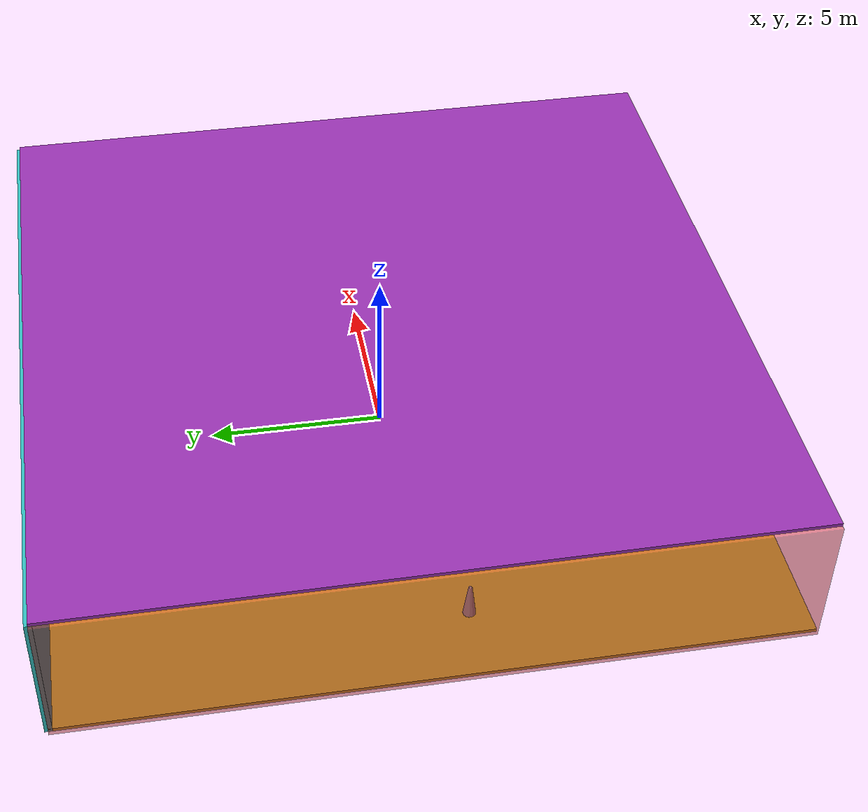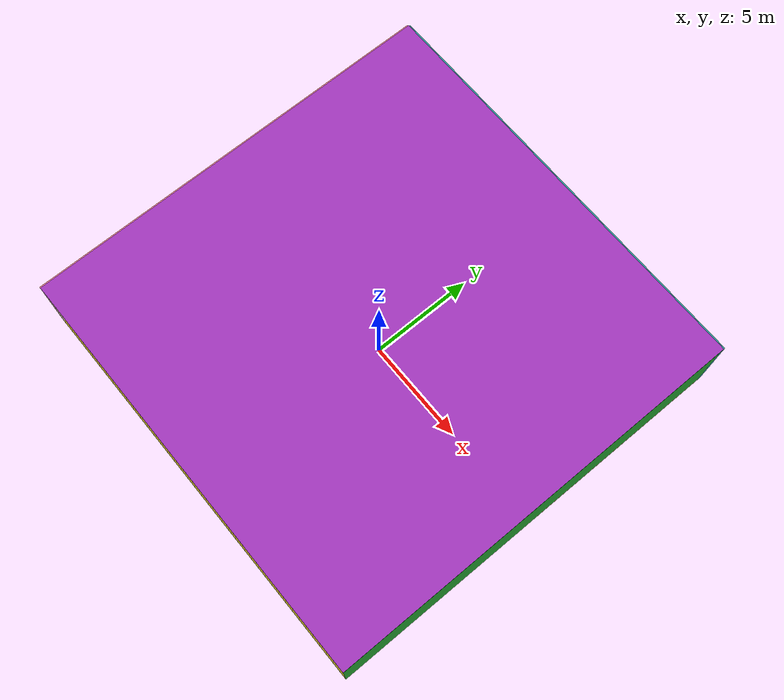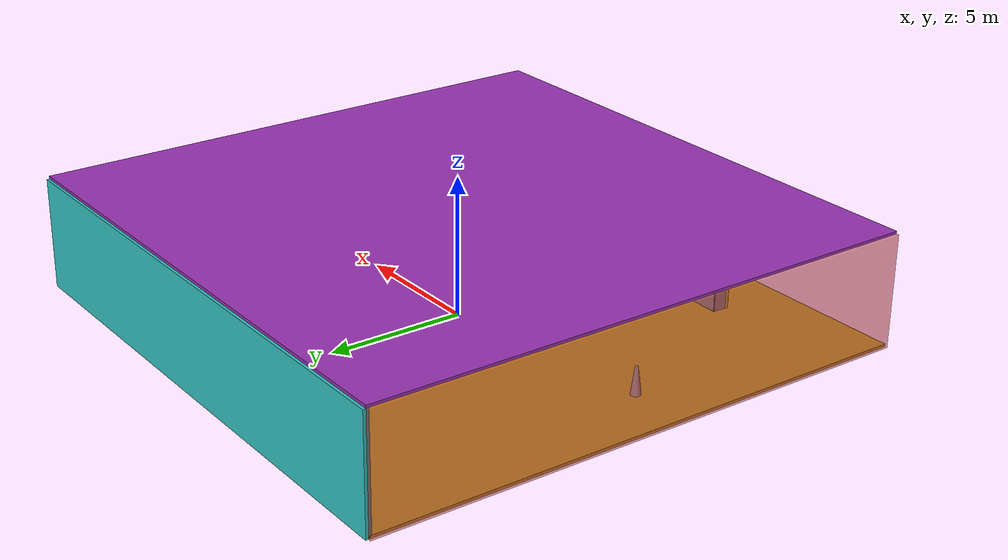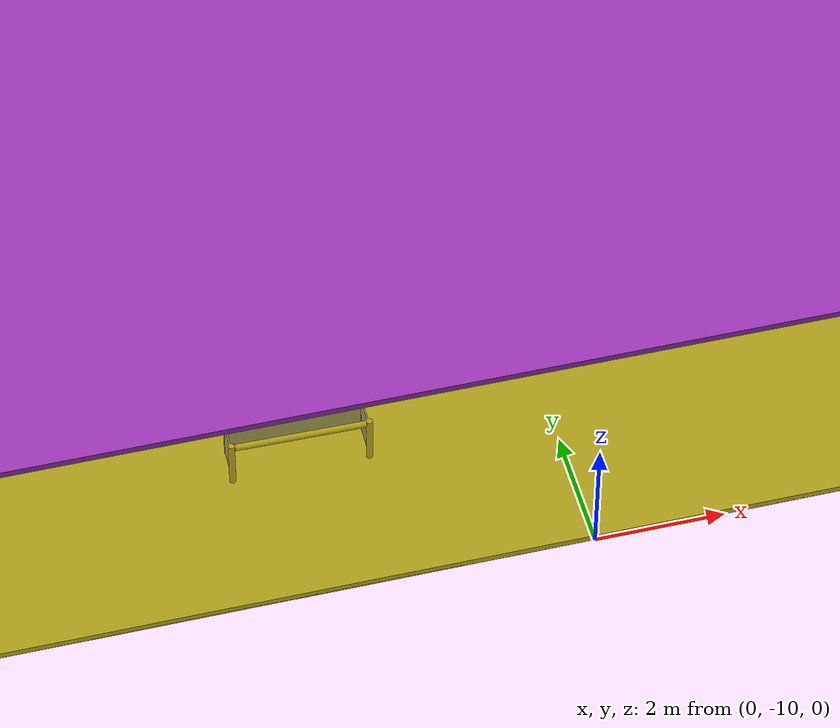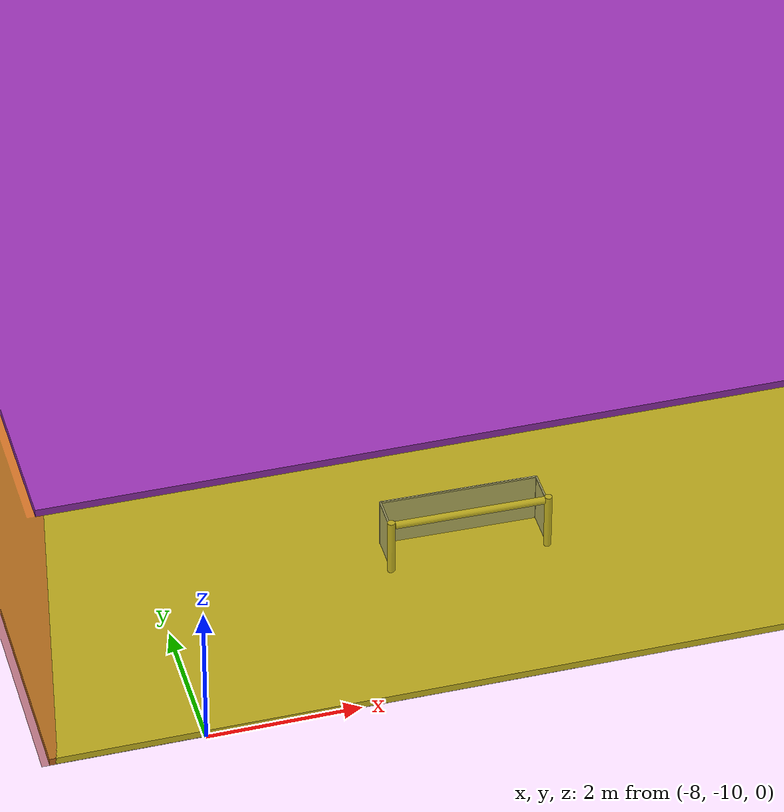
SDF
<sdf version="1.4">
 <world name="default">
  <physics type="ode">
   <max_step_size>0.001</max_step_size>
   <real_time_factor>1</real_time_factor>
   <real_time_update_rate>1000</real_time_update_rate>
   <gravity>0 0 -9.8</gravity>
  </physics>
  <scene><ambient>0.4 0.4 0.4 1</ambient><background>0.7 0.7 0.7 1</background><shadows>1</shadows></scene>
  <model name="Surrounding">
   <static>1</static>
   <link name="Ceiling">
    <collision name="Ceiling_Collision"><geometry><box><size>20 20 0.1</size></box></geometry></collision>
    <visual name="Ceiling_Visual">
     <geometry><box><size>20 20 0.1</size></box></geometry>
     <material>
      <script><uri>file://media/materials/scripts/gazebo.material</uri><name>Gazebo/Purple</name></script>
     </material>
    </visual>
    <pose>0 0 4.05 0 0 0</pose>
   </link>
   <link name="Wall_South">
    <collision name="Wall_South_Collision">
     <geometry><box><size>20 0 4</size></box></geometry>
     <pose>0 0 2 0 -0 0</pose>
    </collision>
    <visual name="Wall_South_Visual">
     <pose>0 0 2 0 -0 0</pose>
     <geometry><box><size>20 0 4</size></box></geometry>
     <material>
      <script>
       <uri>file://media/materials/scripts/gazebo.material</uri>
       <name>Gazebo/YellowTransparent</name>
      </script>
     </material>
    </visual>
    <velocity_decay><linear>0</linear><angular>0</angular></velocity_decay>
    <pose>0 -10 0 0 -0 0</pose>
   </link>
   <link name="Wall_East">
    <collision name="Wall_21_Collision">
     <geometry><box><size>20 0 4</size></box></geometry>
     <pose>0 0 2 0 -0 0</pose>
    </collision>
    <visual name="Wall_21_Visual">
     <pose>0 0 2 0 -0 0</pose>
     <geometry><box><size>20 0 4</size></box></geometry>
     <material>
      <script><uri>file://media/materials/scripts/gazebo.material</uri><name>Gazebo/GreenGlow</name></script>
     </material>
    </visual>
    <velocity_decay><linear>0</linear><angular>0</angular></velocity_decay>
    <pose>10 0 0 0 -0 1.5708</pose>
   </link>
   <link name="Wall_North">
    <collision name="Wall_22_Collision">
     <geometry><box><size>20 0.2 4</size></box></geometry>
     <pose>0 0 2 0 -0 0</pose>
    </collision>
    <visual name="Wall_22_Visual">
     <pose>0 0 2 0 -0 0</pose>
     <geometry><box><size>20 0.2 4</size></box></geometry>
     <material>
      <script>
       <uri>file://media/materials/scripts/gazebo.material</uri>
       <name>Gazebo/TurquoiseGlowOutline</name>
      </script>
     </material>
    </visual>
    <velocity_decay><linear>0</linear><angular>0</angular></velocity_decay>
    <pose>0 10 0 0 -0 0</pose>
   </link>
   <link name="Wall_West">
    <collision name="Wall_23_Collision">
     <geometry><box><size>20 0.2 4</size></box></geometry>
     <pose>0 0 2 0 -0 0</pose>
    </collision>
    <visual name="Wall_23_Visual">
     <pose>0 0 2 0 -0 0</pose>
     <geometry><box><size>20 0.2 4</size></box></geometry>
     <material>
      <script><uri>file://media/materials/scripts/gazebo.material</uri><name>Gazebo/RedTransparent</name></script>
     </material>
    </visual>
    <velocity_decay><linear>0</linear><angular>0</angular></velocity_decay>
    <pose>-10 0 0 0 0 -1.5708</pose>
   </link>
   <link name="Ground_link">
    <collision name="collision">
     <pose>0 0 .05 0 -0 0</pose>
     <geometry><box><size>20 20 0.1</size></box></geometry>
    </collision>
    <visual name="visual">
     <pose>0 0 .05 0 -0 0</pose>
     <geometry><box><size>20 20 0.1</size></box></geometry>
     <material>
      <script><uri>file://media/materials/scripts/gazebo.material</uri><name>Gazebo/ZincYellow</name></script>
     </material>
    </visual>
   </link>
   <static>1</static>
  </model>
  <spherical_coordinates>
   <surface_model>EARTH_WGS84</surface_model>
   <latitude_deg>0</latitude_deg>
   <longitude_deg>0</longitude_deg>
   <elevation>0</elevation>
   <heading_deg>0</heading_deg>
  </spherical_coordinates>
  <light name="lightball_0" type="diffuse">
   <diffuse>0.8 0.8 0.8 1</diffuse>
   <specular>0.2 0.2 0.2 1</specular>
   <attenuation>
    <range>100</range>
    <constant>0.7</constant>
    <linear>0.01</linear>
    <quadratic>0.001</quadratic>
   </attenuation>
   <direction>-0.5 0.1 -0.9</direction>
   <pose>3.76595513564 -6.10517123358 2.08570425312 0 0 0</pose>
  </light>
  <light name="lightball_1" type="diffuse">
   <diffuse>0.8 0.8 0.8 1</diffuse>
   <specular>0.2 0.2 0.2 1</specular>
   <attenuation>
    <range>100</range>
    <constant>0.7</constant>
    <linear>0.01</linear>
    <quadratic>0.001</quadratic>
   </attenuation>
   <direction>-0.5 0.1 -0.9</direction>
   <pose>5.80271822925 -0.921908744207 1.96534497162 0 0 0</pose>
  </light>
  <light name="lightball_2" type="diffuse">
   <diffuse>0.8 0.8 0.8 1</diffuse>
   <specular>0.2 0.2 0.2 1</specular>
   <attenuation>
    <range>100</range>
    <constant>0.7</constant>
    <linear>0.01</linear>
    <quadratic>0.001</quadratic>
   </attenuation>
   <direction>-0.5 0.1 -0.9</direction>
   <pose>8.06356292513 -0.680706503021 3.82653140703 0 0 0</pose>
  </light>
  <include>
   <uri>model://construction_cone</uri>
   <pose>-7.96616832225 -1.09591901291 0 0 0 1.94952461584</pose>
  </include>
  <include>
   <uri>model://robocup_3Dsim_goal</uri>
   <pose>-3.91855482451 -7.6718300884 0 0 0 1.55645386932</pose>
  </include>
  <include>
   <uri>model://textured_shapes</uri>
   <pose>1.70414765167 1.48603973649 0 0 0 2.32037307661</pose>
  </include>
  <include><uri>model://cabinet</uri><pose>4.72826512737 -3.87383491387 0 0 0 0.333540349269</pose></include>
  <include><uri>model://cabinet</uri><pose>7.26520562666 -0.84686153967 0 0 0 1.36602420057</pose></include>
  <include>
   <uri>model://textured_shapes</uri>
   <pose>6.89634106855 5.02751442525 0 0 0 1.55942456357</pose>
  </include>
 </world>
</sdf>

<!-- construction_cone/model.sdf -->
<sdf version="1.5">
  <model name="Construction Cone">
    <link name="link">
      <collision name="collision">
        <geometry>
          <mesh>
            <scale>10 10 10</scale>
            <uri>file://isr-testbed/construction_cone/meshes/construction_cone.dae</uri>
          </mesh>
        </geometry>
      </collision>
      <visual name="visual">
        <geometry>
          <mesh>
            <scale>10 10 10</scale>
            <uri>file://isr-testbed/construction_cone/meshes/construction_cone.dae</uri>
          </mesh>
        </geometry>
      </visual>
    </link>
  </model>
</sdf>

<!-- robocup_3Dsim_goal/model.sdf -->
<sdf version="1.5">
  <model name="robocup_3d_goal">
    <static>true</static>
    <link name="left_post">
      <pose>0 1.05 0.45 0 0 0</pose>
      <collision name="collision">
        <geometry>
          <cylinder>
            <radius>0.05</radius>
            <length>0.9</length>
          </cylinder>
        </geometry>
      </collision>
      <visual name="visual">
        <geometry>
          <cylinder>
            <radius>0.05</radius>
            <length>0.9</length>
          </cylinder>
        </geometry>
        <material>
          <script>
            <uri>file://media/materials/scripts/gazebo.material</uri>
            <name>Gazebo/ZincYellow</name>
          </script>
        </material>
      </visual>
    </link>
    <link name="left_support_horiz_lower">
      <pose>0.30 1.05 0.01 0 0 0</pose>
      <collision name="collision">
        <geometry>
          <box>
            <size>0.50 0.02 0.02</size>
          </box>
        </geometry>
      </collision>
      <visual name="visual">
        <geometry>
          <box>
            <size>0.50 0.02 0.02</size>
          </box>
        </geometry>
        <material>
          <script>
            <uri>file://media/materials/scripts/gazebo.material</uri>
            <name>Gazebo/White</name>
          </script>
        </material>
      </visual>
    </link>
    <link name="left_support_horiz_upper">
      <pose>0.30 1.05 0.79 0 0 0</pose>
      <collision name="collision">
        <geometry>
          <box>
            <size>0.50 0.02 0.02</size>
          </box>
        </geometry>
      </collision>
      <visual name="visual">
        <geometry>
          <box>
            <size>0.50 0.02 0.02</size>
          </box>
        </geometry>
        <material>
          <script>
            <uri>file://media/materials/scripts/gazebo.material</uri>
            <name>Gazebo/White</name>
          </script>
        </material>
      </visual>
    </link>
    <link name="left_support_vertical">
      <pose>0.56 1.05 0.4 0 1.5708 0</pose>
      <collision name="collision">
        <geometry>
          <box>
            <size>0.80 0.02 0.02</size>
          </box>
        </geometry>
      </collision>
      <visual name="visual">
        <geometry>
          <box>
            <size>0.80 0.02 0.02</size>
          </box>
        </geometry>
        <material>
          <script>
            <uri>file://media/materials/scripts/gazebo.material</uri>
            <name>Gazebo/White</name>
          </script>
        </material>
      </visual>
    </link>
    <link name="right_support_horiz_lower">
      <pose>0.30 -1.05 0.01 0 0 0</pose>
      <collision name="collision">
        <geometry>
          <box>
            <size>0.50 0.02 0.02</size>
          </box>
        </geometry>
      </collision>
      <visual name="visual">
        <geometry>
          <box>
            <size>0.50 0.02 0.02</size>
          </box>
        </geometry>
        <material>
          <script>
            <uri>file://media/materials/scripts/gazebo.material</uri>
            <name>Gazebo/White</name>
          </script>
        </material>
      </visual>
    </link>
    <link name="right_support_horiz_upper">
      <pose>0.30 -1.05 0.79 0 0 0</pose>
      <collision name="collision">
        <geometry>
          <box>
            <size>0.50 0.02 0.02</size>
          </box>
        </geometry>
      </collision>
      <visual name="visual">
        <geometry>
          <box>
            <size>0.50 0.02 0.02</size>
          </box>
        </geometry>
        <material>
          <script>
            <uri>file://media/materials/scripts/gazebo.material</uri>
            <name>Gazebo/White</name>
          </script>
        </material>
      </visual>
    </link>
    <link name="right_support_vertical">
      <pose>0.56 -1.05 0.4 0 1.5708 0</pose>
      <collision name="collision">
        <geometry>
          <box>
            <size>0.80 0.02 0.02</size>
          </box>
        </geometry>
      </collision>
      <visual name="visual">
        <geometry>
          <box>
            <size>0.80 0.02 0.02</size>
          </box>
        </geometry>
        <material>
          <script>
            <uri>file://media/materials/scripts/gazebo.material</uri>
            <name>Gazebo/White</name>
          </script>
        </material>
      </visual>
    </link>
    <link name="center_support_horiz_lower">
      <pose>0.56 0 0.01 0 1.5708 0</pose>
      <collision name="collision">
        <geometry>
          <box>
            <size>0.02 2.08 0.02</size>
          </box>
        </geometry>
      </collision>
      <visual name="visual">
        <geometry>
          <box>
            <size>0.02 2.08 0.02</size>
          </box>
        </geometry>
        <material>
          <script>
            <uri>file://media/materials/scripts/gazebo.material</uri>
            <name>Gazebo/White</name>
          </script>
        </material>
      </visual>
    </link>
    <link name="center_support_horiz_upper">
      <pose>0.56 0 0.79 0 1.5708 0</pose>
      <collision name="collision">
        <geometry>
          <box>
            <size>0.02 2.08 0.02</size>
          </box>
        </geometry>
      </collision>
      <visual name="visual">
        <geometry>
          <box>
            <size>0.02 2.08 0.02</size>
          </box>
        </geometry>
        <material>
          <script>
            <uri>file://media/materials/scripts/gazebo.material</uri>
            <name>Gazebo/White</name>
          </script>
        </material>
      </visual>
    </link>
    <link name="right_post">
      <pose>0 -1.05 0.45 0 0 0</pose>
      <collision name="collision">
        <geometry>
          <cylinder>
            <radius>0.05</radius>
            <length>0.9</length>
          </cylinder>
        </geometry>
      </collision>
      <visual name="visual">
        <geometry>
          <cylinder>
            <radius>0.05</radius>
            <length>0.9</length>
          </cylinder>
        </geometry>
        <material>
          <script>
            <uri>file://media/materials/scripts/gazebo.material</uri>
            <name>Gazebo/ZincYellow</name>
          </script>
        </material>
      </visual>
    </link>
    <link name="crossbar">
      <pose>0 0 0.85 1.57 1.57 0</pose>
      <collision name="collision">
        <geometry>
          <cylinder>
            <radius>0.05</radius>
            <length>2.0</length>
          </cylinder>
        </geometry>
      </collision>
      <visual name="visual">
        <geometry>
          <cylinder>
            <radius>0.05</radius>
            <length>2.0</length>
          </cylinder>
        </geometry>
        <material>
          <script>
            <uri>file://media/materials/scripts/gazebo.material</uri>
            <name>Gazebo/ZincYellow</name>
          </script>
        </material>
      </visual>
    </link>
    <link name="center_net">
      <pose>0.56 0 0.40 0 0 0</pose>
      <collision name="collision">
        <geometry>
          <box>
            <size>0.01 2.1 0.80</size>
          </box>
        </geometry>
      </collision>
      <visual name="visual">
        <geometry>
          <box>
            <size>0.01 2.1 0.80</size>
          </box>
        </geometry>
        <material>
          <script>
            <uri>model://../model_source/models/robocup09_spl_field/materials/scripts/</uri>
            <uri>model://../model_source/models/robocup09_spl_field/materials/textures/</uri>
            <name>RoboCup/Net</name>
          </script>
        </material>
      </visual>
    </link>
    <link name="left_net">
      <pose>0.30 1.05 0.40 0 0 0</pose>
      <collision name="collision">
        <geometry>
          <box>
            <size>0.50 0.01 0.76</size>
          </box>
        </geometry>
      </collision>
      <visual name="visual">
        <geometry>
          <box>
            <size>0.50 0.01 0.76</size>
          </box>
        </geometry>
        <material>
          <script>
            <uri>model://../model_source/models/robocup09_spl_field/materials/scripts/</uri>
            <uri>model://../model_source/models/robocup09_spl_field/materials/textures/</uri>
            <name>RoboCup/Net</name>
          </script>
        </material>
      </visual>
    </link>
    <link name="right_net">
      <pose>0.30 -1.05 0.40 0 0 0</pose>
      <collision name="collision">
        <geometry>
          <box>
            <size>0.50 0.01 0.76</size>
          </box>
        </geometry>
      </collision>
      <visual name="visual">
        <geometry>
          <box>
            <size>0.50 0.01 0.76</size>
          </box>
        </geometry>
        <material>
          <script>
            <uri>model://../model_source/models/robocup09_spl_field/materials/scripts/</uri>
            <uri>model://../model_source/models/robocup09_spl_field/materials/textures/</uri>
            <name>RoboCup/Net</name>
          </script>
        </material>
      </visual>
    </link>
  </model>
</sdf>

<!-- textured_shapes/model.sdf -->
<sdf version="1.6">
  <model name="textured_shapes">
    <pose>0 0 0.5 0 0 0</pose>
    <link name="box">
      <pose>0 -1.5 0 0 0 0</pose>
      <collision name="collision">
        <geometry>
          <box>
            <size>1 1 1</size>
          </box>
        </geometry>
      </collision>
      <visual name="visual">
        <geometry>
          <box>
            <size>1 1 1</size>
          </box>
        </geometry>
        <material>
          <script>
            <uri>model://../model_source/models/textured_shapes/materials/scripts</uri>
            <uri>model://../model_source/models/textured_shapes/materials/textures</uri>
            <name>TexturedShape/Squares</name>
          </script>
        </material>
      </visual>
    </link>
    <link name="sphere">
      <collision name="collision">
        <geometry>
          <sphere>
            <radius>0.5</radius>
          </sphere>
        </geometry>
      </collision>
      <visual name="visual">
        <geometry>
          <sphere>
            <radius>0.5</radius>
          </sphere>
        </geometry>
        <material>
          <script>
            <uri>model://../model_source/models/textured_shapes/materials/scripts</uri>
            <uri>model://../model_source/models/textured_shapes/materials/textures</uri>
            <name>TexturedShape/Squares</name>
          </script>
        </material>
      </visual>
    </link>
    <link name="cylinder">
      <pose>0 1.5 0 0 0 0</pose>
      <collision name="collision">
        <geometry>
          <cylinder>
            <radius>0.5</radius>
            <length>1</length>
          </cylinder>
        </geometry>
      </collision>
      <visual name="visual">
        <geometry>
          <cylinder>
            <radius>0.5</radius>
            <length>1</length>
          </cylinder>
        </geometry>
        <material>
          <script>
            <uri>model://../model_source/models/textured_shapes/materials/scripts</uri>
            <uri>model://../model_source/models/textured_shapes/materials/textures</uri>
            <name>TexturedShape/Squares</name>
          </script>
        </material>
      </visual>
    </link>
  </model>
</sdf>

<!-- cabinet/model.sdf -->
<sdf version="1.5">
  <model name="cabinet">
    <static>true</static>
    <link name="cabinet_bottom_plate">
      <inertial>
        <pose>0 0 -1 0 0 0</pose>
        <inertia>
          <ixx>2.050000</ixx>
          <ixy>0</ixy>
          <ixz>0</ixz>
          <iyy>2.050000</iyy>
          <iyz>0</iyz>
          <izz>2.050000</izz>
        </inertia>
        <mass>25.000000</mass>
      </inertial>
      <collision name="cabinet_bottom_plate_geom">
        <pose>0 0 0.010000 0 0 0</pose>
        <geometry>
          <box>
            <size>0.450000 0.450000 0.020000</size>
          </box>
        </geometry>
      </collision>
      <visual name="cabinet_bottom_plate_geom_visual">
        <pose>0 0 0.010000 0 0 0</pose>
        <geometry>
          <box>
            <size>0.450000 0.450000 0.020000</size>
          </box>
        </geometry>
        <material>
          <script>
            <uri>model://media/materials/scripts/gazebo.material</uri>
            <name>Gazebo/Wood</name>
          </script>
        </material>
      </visual>
      <collision name="cabinet_bottom_plate_geom_cabinet_back_plate">
        <pose>0.235000 0 0.510000 0 0 0</pose>
        <geometry>
          <box>
            <size>0.020000 0.450000 1.020000</size>
          </box>
        </geometry>
      </collision>
      <visual name="cabinet_bottom_plate_geom_cabinet_back_plate_visual">
        <pose>0.235000 0 0.510000 0 0 0</pose>
        <geometry>
          <box>
            <size>0.020000 0.450000 1.020000</size>
          </box>
        </geometry>
        <material>
          <script>
            <uri>model://media/materials/scripts/gazebo.material</uri>
            <name>Gazebo/Wood</name>
          </script>
        </material>
      </visual>
      <collision name="cabinet_bottom_plate_geom_cabinet_left_plate">
        <pose>0 0.235000 0.510000 0 0 0</pose>
        <geometry>
          <box>
            <size>0.450000 0.020000 1.020000</size>
          </box>
        </geometry>
      </collision>
      <visual name="cabinet_bottom_plate_geom_cabinet_left_plate_visual">
        <pose>0 0.235000 0.510000 0 0 0</pose>
        <geometry>
          <box>
            <size>0.450000 0.020000 1.020000</size>
          </box>
        </geometry>
        <material>
          <script>
            <uri>model://media/materials/scripts/gazebo.material</uri>
            <name>Gazebo/Wood</name>
          </script>
        </material>
      </visual>
      <collision name="cabinet_bottom_plate_geom_cabinet_middle_plate">
        <pose>0 0 0.510000 0 0 0</pose>
        <geometry>
          <box>
            <size>0.450000 0.450000 0.020000</size>
          </box>
        </geometry>
      </collision>
      <visual name="cabinet_bottom_plate_geom_cabinet_middle_plate_visual">
        <pose>0 0 0.510000 0 0 0</pose>
        <geometry>
          <box>
            <size>0.450000 0.450000 0.020000</size>
          </box>
        </geometry>
        <material>
          <script>
            <uri>model://media/materials/scripts/gazebo.material</uri>
            <name>Gazebo/Wood</name>
          </script>
        </material>
      </visual>
      <collision name="cabinet_bottom_plate_geom_cabinet_right_plate">
        <pose>0 -0.235000 0.510000 0 0 0</pose>
        <geometry>
          <box>
            <size>0.450000 0.020000 1.020000</size>
          </box>
        </geometry>
      </collision>
      <visual name="cabinet_bottom_plate_geom_cabinet_right_plate_visual">
        <pose>0 -0.235000 0.510000 0 0 0</pose>
        <geometry>
          <box>
            <size>0.450000 0.020000 1.020000</size>
          </box>
        </geometry>
        <material>
          <script>
            <uri>model://media/materials/scripts/gazebo.material</uri>
            <name>Gazebo/Wood</name>
          </script>
        </material>
      </visual>
      <collision name="cabinet_bottom_plate_geom_cabinet_top_plate">
        <pose>0 0 1.010000 0 0 0</pose>
        <geometry>
          <box>
            <size>0.450000 0.450000 0.020000</size>
          </box>
        </geometry>
      </collision>
      <visual name="cabinet_bottom_plate_geom_cabinet_top_plate_visual">
        <pose>0 0 1.010000 0 0 0</pose>
        <geometry>
          <box>
            <size>0.450000 0.450000 0.020000</size>
          </box>
        </geometry>
        <material>
          <script>
            <uri>model://media/materials/scripts/gazebo.material</uri>
            <name>Gazebo/Wood</name>
          </script>
        </material>
      </visual>
    </link>
  </model>
</sdf>
